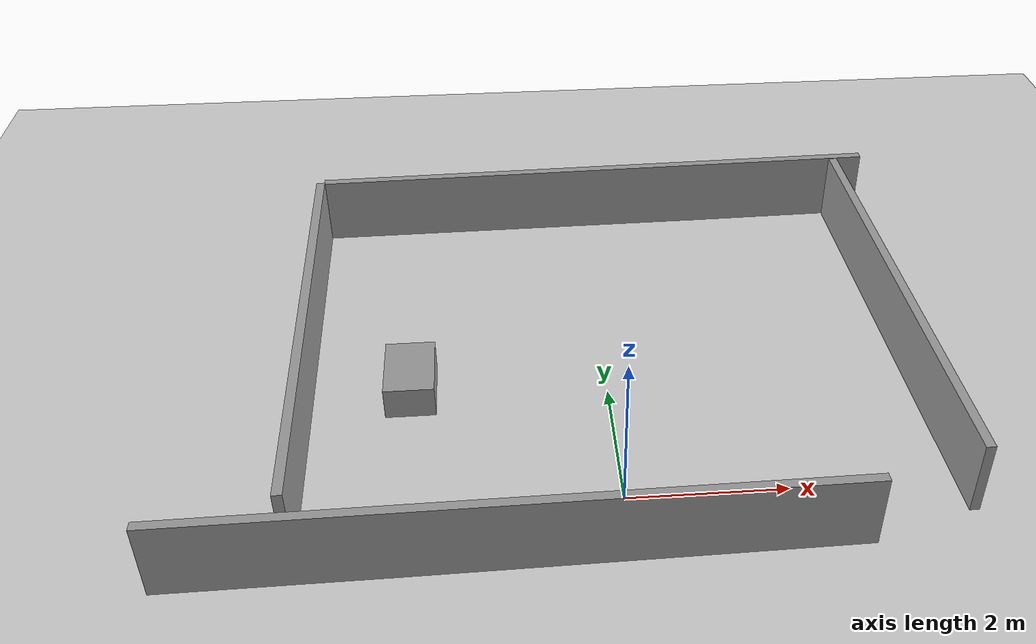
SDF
<sdf version="1.7">
 <world name="default">
  <light name="sun" type="directional">
   <pose>0 0 10 0 -0 0</pose>
   <diffuse>0.8 0.8 0.8 1</diffuse>
   <specular>0.2 0.2 0.2 1</specular>
   <attenuation>
    <range>1000</range>
    <constant>0.9</constant>
    <linear>0.01</linear>
    <quadratic>0.001</quadratic>
   </attenuation>
   <direction>-0.5 0.1 -0.9</direction>
   <spot><inner_angle>0</inner_angle><outer_angle>0</outer_angle><falloff>0</falloff></spot>
  </light>
  <model name="ground_plane">
   <static>1</static>
   <link name="link">
    <collision name="collision">
     <geometry><plane><normal>0 0 1</normal><size>100 100</size></plane></geometry>
     <surface>
      <contact><collide_bitmask>65535</collide_bitmask></contact>
      <friction><ode><mu>100</mu><mu2>50</mu2></ode></friction>
     </surface>
    </collision>
    <visual name="visual">
     <cast_shadows>0</cast_shadows>
     <geometry><plane><normal>0 0 1</normal><size>100 100</size></plane></geometry>
     <material>
      <script><uri>file://media/materials/scripts/gazebo.material</uri><name>Gazebo/Grey</name></script>
     </material>
    </visual>
   </link>
  </model>
  <gravity>0 0 -9.8</gravity>
  <magnetic_field>6e-06 2.3e-05 -4.2e-05</magnetic_field>
  <atmosphere type="adiabatic"/>
  <physics type="ode">
   <max_step_size>0.001</max_step_size>
   <real_time_factor>1</real_time_factor>
   <real_time_update_rate>1000</real_time_update_rate>
  </physics>
  <scene><ambient>0.4 0.4 0.4 1</ambient><background>0.7 0.7 0.7 1</background><shadows>1</shadows></scene>
  <spherical_coordinates>
   <surface_model>EARTH_WGS84</surface_model>
   <latitude_deg>0</latitude_deg>
   <longitude_deg>0</longitude_deg>
   <elevation>0</elevation>
   <heading_deg>0</heading_deg>
  </spherical_coordinates>
  <model name="unit_box">
   <pose>-3.93767 2.75077 0.491846 0.002414 -3.8e-05 0.015845</pose>
   <link name="link">
    <inertial>
     <mass>1</mass>
     <inertia>
      <ixx>0.166667</ixx>
      <ixy>0</ixy>
      <ixz>0</ixz>
      <iyy>0.166667</iyy>
      <iyz>0</iyz>
      <izz>0.166667</izz>
     </inertia>
    </inertial>
    <collision name="collision"><geometry><box><size>0.124276 6.76278 1</size></box></geometry></collision>
    <visual name="visual">
     <geometry><box><size>0.124276 6.76278 1</size></box></geometry>
     <material>
      <script><name>Gazebo/Grey</name><uri>file://media/materials/scripts/gazebo.material</uri></script>
     </material>
    </visual>
   </link>
  </model>
  <model name="unit_box_clone">
   <pose>4.04228 2.86296 0.491846 0.002414 -3.8e-05 0.015845</pose>
   <link name="link">
    <inertial>
     <mass>1</mass>
     <inertia>
      <ixx>0.166667</ixx>
      <ixy>0</ixy>
      <ixz>0</ixz>
      <iyy>0.166667</iyy>
      <iyz>0</iyz>
      <izz>0.166667</izz>
     </inertia>
    </inertial>
    <collision name="collision"><geometry><box><size>0.124276 6.76278 1</size></box></geometry></collision>
    <visual name="visual">
     <geometry><box><size>0.124276 6.76278 1</size></box></geometry>
     <material>
      <script><name>Gazebo/Grey</name><uri>file://media/materials/scripts/gazebo.material</uri></script>
     </material>
    </visual>
   </link>
  </model>
  <model name="unit_box_clone_0">
   <pose>0.249705 6.27817 0.47939 0.004921 -6.2e-05 -1.5582</pose>
   <link name="link">
    <inertial>
     <mass>1</mass>
     <inertia>
      <ixx>0.166667</ixx>
      <ixy>0</ixy>
      <ixz>0</ixz>
      <iyy>0.166667</iyy>
      <iyz>0</iyz>
      <izz>0.166667</izz>
     </inertia>
    </inertial>
    <collision name="collision"><geometry><box><size>0.124276 8.38662 1</size></box></geometry></collision>
    <visual name="visual">
     <geometry><box><size>0.124276 8.38662 1</size></box></geometry>
     <material>
      <script><name>Gazebo/Grey</name><uri>file://media/materials/scripts/gazebo.material</uri></script>
     </material>
    </visual>
   </link>
  </model>
  <model name="unit_box_clone_0_clone">
   <pose>-1.28056 -0.930258 0.481343 -0.00456 5.9e-05 -1.55789</pose>
   <link name="link">
    <inertial>
     <mass>1</mass>
     <inertia>
      <ixx>0.166667</ixx>
      <ixy>0</ixy>
      <ixz>0</ixz>
      <iyy>0.166667</iyy>
      <iyz>0</iyz>
      <izz>0.166667</izz>
     </inertia>
    </inertial>
    <collision name="collision"><geometry><box><size>0.124276 8.19287 1</size></box></geometry></collision>
    <visual name="visual">
     <geometry><box><size>0.124276 8.19287 1</size></box></geometry>
     <material>
      <script><name>Gazebo/Grey</name><uri>file://media/materials/scripts/gazebo.material</uri></script>
     </material>
    </visual>
   </link>
  </model>
  <model name="unit_box_0">
   <pose>-2.58254 2.21938 0.214973 0 0 -0.000142</pose>
   <link name="link">
    <inertial>
     <mass>1</mass>
     <inertia>
      <ixx>0.166667</ixx>
      <ixy>0</ixy>
      <ixz>0</ixz>
      <iyy>0.166667</iyy>
      <iyz>0</iyz>
      <izz>0.166667</izz>
     </inertia>
    </inertial>
    <collision name="collision"><geometry><box><size>0.654163 1 0.429946</size></box></geometry></collision>
    <visual name="visual">
     <geometry><box><size>0.654163 1 0.429946</size></box></geometry>
     <material>
      <script><name>Gazebo/Grey</name><uri>file://media/materials/scripts/gazebo.material</uri></script>
     </material>
    </visual>
   </link>
  </model>
 </world>
</sdf>
